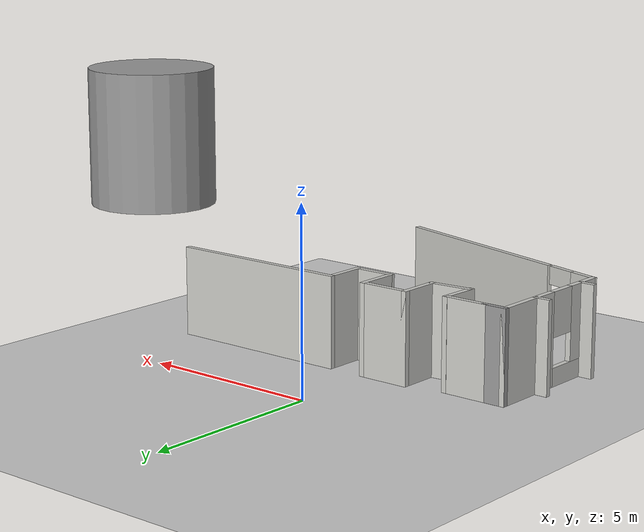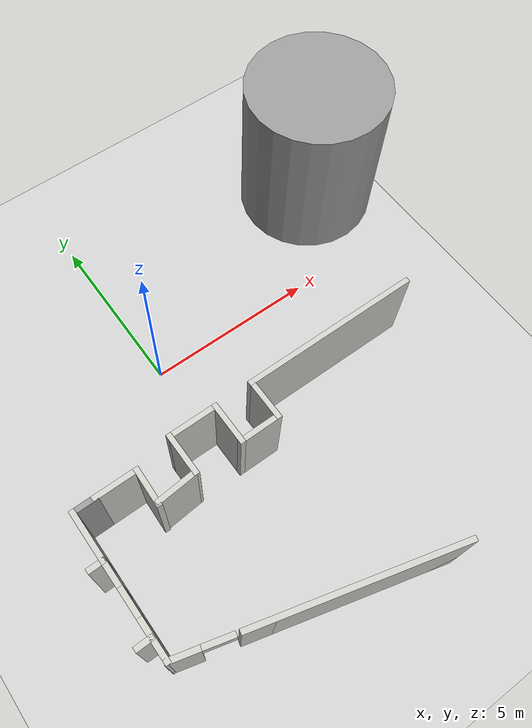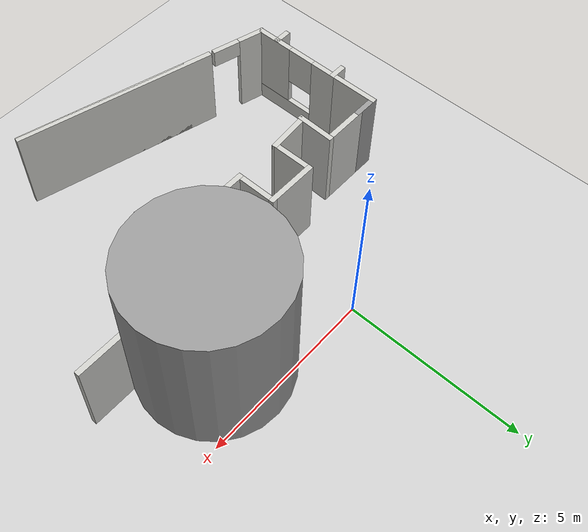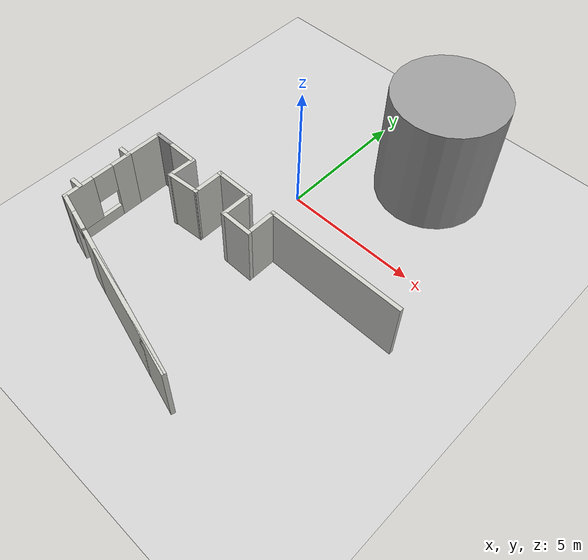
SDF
<sdf version="1.6">
 <world name="default">
  <model name="ground_plane">
   <static>1</static>
   <link name="link">
    <collision name="collision">
     <geometry><plane><normal>0 0 1</normal><size>100 100</size></plane></geometry>
     <surface><friction><ode><mu>100</mu><mu2>50</mu2></ode></friction></surface>
    </collision>
    <visual name="visual">
     <cast_shadows>0</cast_shadows>
     <geometry><plane><normal>0 0 1</normal><size>100 100</size></plane></geometry>
     <material>
      <script><uri>file://media/materials/scripts/gazebo.material</uri><name>Gazebo/Grey</name></script>
     </material>
    </visual>
   </link>
  </model>
  <model name="unit_cylinder_0">
   <pose>4.89669 0.178778 6.15584 1e-06 -0 0.031552</pose>
   <link name="link">
    <inertial>
     <mass>1</mass>
     <inertia><ixx>0.145833</ixx><ixy>0</ixy><ixz>0</ixz><iyy>0.145833</iyy><iyz>0</iyz><izz>0.125</izz></inertia>
    </inertial>
    <collision name="collision">
     <geometry><cylinder><radius>1.6</radius><length>3.5</length></cylinder></geometry>
    </collision>
    <visual name="visual">
     <geometry><cylinder><radius>1.6</radius><length>3.5</length></cylinder></geometry>
     <material>
      <script><name>Gazebo/Grey</name><uri>file://media/materials/scripts/gazebo.material</uri></script>
     </material>
    </visual>
   </link>
  </model>
  <model name="sustituto_casa_slamexample">
   <pose>0.970616 -5.64708 0 0 -0 0</pose>
   <link name="Wall_29">
    <collision name="Wall_29_Collision">
     <geometry><box><size>5.25 0.15 2.5</size></box></geometry>
     <pose>0 0 1.25 0 -0 0</pose>
    </collision>
    <visual name="Wall_29_Visual">
     <pose>0 0 1.25 0 -0 0</pose>
     <geometry><box><size>5.25 0.15 2.5</size></box></geometry>
     <material>
      <script><uri>file://media/materials/scripts/gazebo.material</uri><name>Gazebo/CeilingTiled</name></script>
      <ambient>1 1 1 1</ambient>
     </material>
    </visual>
    <pose>2.84095 3.05996 0 0 -0 3.14159</pose>
   </link>
   <link name="Wall_30">
    <collision name="Wall_30_Collision">
     <geometry><box><size>1.25 0.15 2.5</size></box></geometry>
     <pose>0 0 1.25 0 -0 0</pose>
    </collision>
    <visual name="Wall_30_Visual">
     <pose>0 0 1.25 0 -0 0</pose>
     <geometry><box><size>1.25 0.15 2.5</size></box></geometry>
     <material>
      <script><uri>file://media/materials/scripts/gazebo.material</uri><name>Gazebo/CeilingTiled</name></script>
      <ambient>1 1 1 1</ambient>
     </material>
    </visual>
    <pose>0.29095 2.50996 0 0 0 -1.5708</pose>
   </link>
   <link name="Wall_31">
    <collision name="Wall_31_Collision">
     <geometry><box><size>1.25 0.15 2.5</size></box></geometry>
     <pose>0 0 1.25 0 -0 0</pose>
    </collision>
    <visual name="Wall_31_Visual">
     <pose>0 0 1.25 0 -0 0</pose>
     <geometry><box><size>1.25 0.15 2.5</size></box></geometry>
     <material>
      <script><uri>file://media/materials/scripts/gazebo.material</uri><name>Gazebo/CeilingTiled</name></script>
      <ambient>1 1 1 1</ambient>
     </material>
    </visual>
    <pose>-0.25905 1.95996 0 0 -0 3.14159</pose>
   </link>
   <link name="Wall_32">
    <collision name="Wall_32_Collision">
     <geometry><box><size>1.25 0.15 2.5</size></box></geometry>
     <pose>0 0 1.25 0 -0 0</pose>
    </collision>
    <visual name="Wall_32_Visual">
     <pose>0 0 1.25 0 -0 0</pose>
     <geometry><box><size>1.25 0.15 2.5</size></box></geometry>
     <material>
      <script><uri>file://media/materials/scripts/gazebo.material</uri><name>Gazebo/CeilingTiled</name></script>
      <ambient>1 1 1 1</ambient>
     </material>
    </visual>
    <pose>-0.80905 2.50996 0 0 -0 1.5708</pose>
   </link>
   <link name="Wall_33">
    <collision name="Wall_33_Collision">
     <geometry><box><size>1.5 0.15 2.5</size></box></geometry>
     <pose>0 0 1.25 0 -0 0</pose>
    </collision>
    <visual name="Wall_33_Visual">
     <pose>0 0 1.25 0 -0 0</pose>
     <geometry><box><size>1.5 0.15 2.5</size></box></geometry>
     <material>
      <script><uri>file://media/materials/scripts/gazebo.material</uri><name>Gazebo/CeilingTiled</name></script>
      <ambient>1 1 1 1</ambient>
     </material>
    </visual>
    <pose>-1.48405 3.05996 0 0 -0 3.14159</pose>
   </link>
   <link name="Wall_34">
    <collision name="Wall_34_Collision">
     <geometry><box><size>1.25 0.15 2.5</size></box></geometry>
     <pose>0 0 1.25 0 -0 0</pose>
    </collision>
    <visual name="Wall_34_Visual">
     <pose>0 0 1.25 0 -0 0</pose>
     <geometry><box><size>1.25 0.15 2.5</size></box></geometry>
     <material>
      <script><uri>file://media/materials/scripts/gazebo.material</uri><name>Gazebo/CeilingTiled</name></script>
      <ambient>1 1 1 1</ambient>
     </material>
    </visual>
    <pose>-2.15905 2.50996 0 0 0 -1.5708</pose>
   </link>
   <link name="Wall_35">
    <collision name="Wall_35_Collision">
     <geometry><box><size>1.2537 0.15 2.5</size></box></geometry>
     <pose>0 0 1.25 0 -0 0</pose>
    </collision>
    <visual name="Wall_35_Visual">
     <pose>0 0 1.25 0 -0 0</pose>
     <geometry><box><size>1.2537 0.15 2.5</size></box></geometry>
     <material>
      <script><uri>file://media/materials/scripts/gazebo.material</uri><name>Gazebo/CeilingTiled</name></script>
      <ambient>1 1 1 1</ambient>
     </material>
    </visual>
    <pose>-2.70905 1.91479 0 0 0 -3.05966</pose>
   </link>
   <link name="Wall_36">
    <collision name="Wall_36_Collision">
     <geometry><box><size>1.12176 0.15 2.5</size></box></geometry>
     <pose>0 0 1.25 0 -0 0</pose>
    </collision>
    <visual name="Wall_36_Visual">
     <pose>0 0 1.25 0 -0 0</pose>
     <geometry><box><size>1.12176 0.15 2.5</size></box></geometry>
     <material>
      <script><uri>file://media/materials/scripts/gazebo.material</uri><name>Gazebo/CeilingTiled</name></script>
      <ambient>1 1 1 1</ambient>
     </material>
    </visual>
    <pose>-3.27452 2.32432 0 0 -0 1.53895</pose>
   </link>
   <link name="Wall_38">
    <collision name="Wall_38_Collision">
     <geometry><box><size>1.25 0.15 2.5</size></box></geometry>
     <pose>0 0 1.25 0 -0 0</pose>
    </collision>
    <visual name="Wall_38_Visual">
     <pose>0 0 1.25 0 -0 0</pose>
     <geometry><box><size>1.25 0.15 2.5</size></box></geometry>
     <material>
      <script><uri>file://media/materials/scripts/gazebo.material</uri><name>Gazebo/CeilingTiled</name></script>
      <ambient>1 1 1 1</ambient>
     </material>
    </visual>
    <pose>-3.86944 2.80922 0 0 -0 3.14159</pose>
   </link>
   <link name="Wall_39">
    <collision name="Wall_39_Collision">
     <geometry><box><size>0.75 0.15 2.5</size></box></geometry>
     <pose>0 0 1.25 0 -0 0</pose>
    </collision>
    <visual name="Wall_39_Visual">
     <pose>0 0 1.25 0 -0 0</pose>
     <geometry><box><size>0.75 0.15 2.5</size></box></geometry>
     <material>
      <script><uri>file://media/materials/scripts/gazebo.material</uri><name>Gazebo/Grey</name></script>
      <ambient>1 1 1 1</ambient>
     </material>
    </visual>
    <pose>-4.71944 2.80922 0 0 -0 3.14159</pose>
   </link>
   <link name="Wall_40">
    <collision name="Wall_40_Collision">
     <geometry><box><size>1.5 0.15 2.5</size></box></geometry>
     <pose>0 0 1.25 0 -0 0</pose>
    </collision>
    <visual name="Wall_40_Visual">
     <pose>0 0 1.25 0 -0 0</pose>
     <geometry><box><size>1.5 0.15 2.5</size></box></geometry>
     <material>
      <script><uri>file://media/materials/scripts/gazebo.material</uri><name>Gazebo/CeilingTiled</name></script>
      <ambient>1 1 1 1</ambient>
     </material>
    </visual>
    <pose>-5.01944 2.13422 0 0 0 -1.5708</pose>
   </link>
   <link name="Wall_41">
    <collision name="Wall_41_Collision">
     <geometry><box><size>0.5 0.15 2.5</size></box></geometry>
     <pose>0 0 1.25 0 -0 0</pose>
    </collision>
    <visual name="Wall_41_Visual">
     <pose>0 0 1.25 0 -0 0</pose>
     <geometry><box><size>0.5 0.15 2.5</size></box></geometry>
     <material>
      <script><uri>file://media/materials/scripts/gazebo.material</uri><name>Gazebo/CeilingTiled</name></script>
      <ambient>1 1 1 1</ambient>
     </material>
    </visual>
    <pose>-5.19444 1.45922 0 0 -0 3.14159</pose>
   </link>
   <link name="Wall_44">
    <pose>-5.01944 0.15922 0 0 0 -1.5708</pose>
    <visual name="Wall_44_Visual_0">
     <pose>-0.986249 0 1.25 0 -0 0</pose>
     <geometry><box><size>0.777503 0.15 2.5</size></box></geometry>
     <material>
      <script><uri>file://media/materials/scripts/gazebo.material</uri><name>Gazebo/CeilingTiled</name></script>
      <ambient>1 1 1 1</ambient>
     </material>
    </visual>
    <collision name="Wall_44_Collision_0">
     <geometry><box><size>0.777503 0.15 2.5</size></box></geometry>
     <pose>-0.986249 0 1.25 0 -0 0</pose>
    </collision>
    <visual name="Wall_44_Visual_1">
     <pose>0.388751 0 0.25 0 -0 0</pose>
     <geometry><box><size>1.9725 0.15 0.5</size></box></geometry>
     <material>
      <script><uri>file://media/materials/scripts/gazebo.material</uri><name>Gazebo/CeilingTiled</name></script>
      <ambient>1 1 1 1</ambient>
     </material>
    </visual>
    <collision name="Wall_44_Collision_1">
     <geometry><box><size>1.9725 0.15 0.5</size></box></geometry>
     <pose>0.388751 0 0.25 0 -0 0</pose>
    </collision>
    <visual name="Wall_44_Visual_2">
     <pose>0.788751 0 1.5 0 -0 0</pose>
     <geometry><box><size>1.1725 0.15 2</size></box></geometry>
     <material>
      <script><uri>file://media/materials/scripts/gazebo.material</uri><name>Gazebo/CeilingTiled</name></script>
      <ambient>1 1 1 1</ambient>
     </material>
    </visual>
    <collision name="Wall_44_Collision_2">
     <geometry><box><size>1.1725 0.15 2</size></box></geometry>
     <pose>0.788751 0 1.5 0 -0 0</pose>
    </collision>
    <visual name="Wall_44_Visual_3">
     <pose>-0.197497 0 1.9 0 -0 0</pose>
     <geometry><box><size>0.8 0.15 1.2</size></box></geometry>
     <material>
      <script><uri>file://media/materials/scripts/gazebo.material</uri><name>Gazebo/CeilingTiled</name></script>
      <ambient>1 1 1 1</ambient>
     </material>
    </visual>
    <collision name="Wall_44_Collision_3">
     <geometry><box><size>0.8 0.15 1.2</size></box></geometry>
     <pose>-0.197497 0 1.9 0 -0 0</pose>
    </collision>
   </link>
   <link name="Wall_46">
    <collision name="Wall_46_Collision">
     <geometry><box><size>0.5 0.15 2.5</size></box></geometry>
     <pose>0 0 1.25 0 -0 0</pose>
    </collision>
    <visual name="Wall_46_Visual">
     <pose>0 0 1.25 0 -0 0</pose>
     <geometry><box><size>0.5 0.15 2.5</size></box></geometry>
     <material>
      <script><uri>file://media/materials/scripts/gazebo.material</uri><name>Gazebo/CeilingTiled</name></script>
      <ambient>1 1 1 1</ambient>
     </material>
    </visual>
    <pose>-5.21595 -0.547468 0 0 -0 3.14159</pose>
   </link>
   <link name="Wall_49">
    <pose>-1.46966 -2.09194 0 0 0 -0.261799</pose>
    <visual name="Wall_49_Visual_0">
     <pose>-3.32951 0 1.25 0 -0 0</pose>
     <geometry><box><size>0.840984 0.15 2.5</size></box></geometry>
     <material>
      <script><uri>file://media/materials/scripts/gazebo.material</uri><name>Gazebo/CeilingTiled</name></script>
      <ambient>1 1 1 1</ambient>
     </material>
    </visual>
    <collision name="Wall_49_Collision_0">
     <geometry><box><size>0.840984 0.15 2.5</size></box></geometry>
     <pose>-3.32951 0 1.25 0 -0 0</pose>
    </collision>
    <visual name="Wall_49_Visual_1">
     <pose>0.870492 0 1.25 0 -0 0</pose>
     <geometry><box><size>5.75902 0.15 2.5</size></box></geometry>
     <material>
      <script><uri>file://media/materials/scripts/gazebo.material</uri><name>Gazebo/CeilingTiled</name></script>
      <ambient>1 1 1 1</ambient>
     </material>
    </visual>
    <collision name="Wall_49_Collision_1">
     <geometry><box><size>5.75902 0.15 2.5</size></box></geometry>
     <pose>0.870492 0 1.25 0 -0 0</pose>
    </collision>
    <visual name="Wall_49_Visual_2">
     <pose>1.27901 0 1.25 0 -0 0</pose>
     <geometry><box><size>4.94198 0.15 2.5</size></box></geometry>
     <material>
      <script><uri>file://media/materials/scripts/gazebo.material</uri><name>Gazebo/CeilingTiled</name></script>
      <ambient>1 1 1 1</ambient>
     </material>
    </visual>
    <collision name="Wall_49_Collision_2">
     <geometry><box><size>4.94198 0.15 2.5</size></box></geometry>
     <pose>1.27901 0 1.25 0 -0 0</pose>
    </collision>
    <visual name="Wall_49_Visual_3">
     <pose>-2.5005 0 2.25 0 -0 0</pose>
     <geometry><box><size>0.817033 0.15 0.5</size></box></geometry>
     <material>
      <script><uri>file://media/materials/scripts/gazebo.material</uri><name>Gazebo/CeilingTiled</name></script>
      <ambient>1 1 1 1</ambient>
     </material>
    </visual>
    <collision name="Wall_49_Collision_3">
     <geometry><box><size>0.817033 0.15 0.5</size></box></geometry>
     <pose>-2.5005 0 2.25 0 -0 0</pose>
    </collision>
   </link>
   <static>1</static>
  </model>
 </world>
</sdf>
